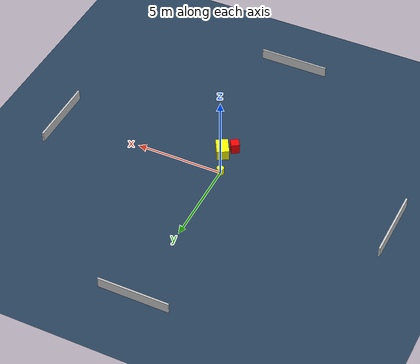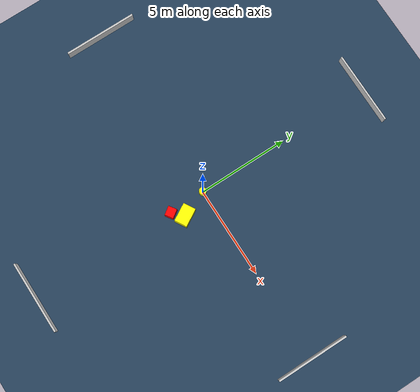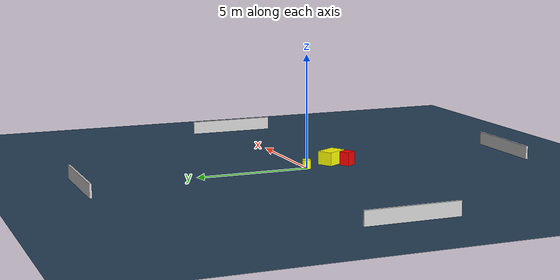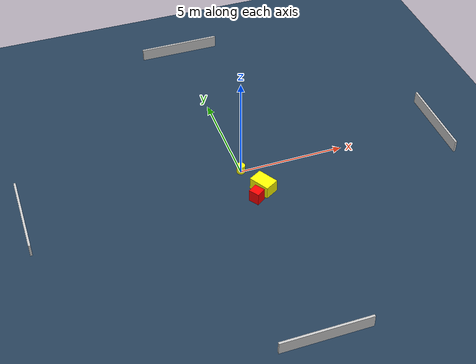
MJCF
<?xml version="1.0" ?>
<mujoco model="generated_environment">
  <option timestep="0.01" integrator="RK4" cone="elliptic"/>
  <default>
    <geom density="1"/>
  </default>
  <asset>
    <texture builtin="gradient" height="3072" name="skybox" rgb1="0.3 0.5 0.7" rgb2="0 0 0" type="skybox" width="512"/>
    <texture builtin="checker" height="300" name="groundplane" rgb1="0.2 0.3 0.4" rgb2="0.1 0.2 0.3" type="2d" width="300"/>
    <material name="groundplane" reflectance="0.2" texrepeat="5 5" texture="groundplane"/>
  </asset>
  <worldbody>
    <light dir="0 0 -1" directional="true" pos="0 0 1.5"/>
    <geom condim="3" friction="0.5 0.005 0.001" material="groundplane" name="floor" pos="0 0 0" size="0 0 0.05" type="plane"/>
    <body name="walls">
      <geom name="wall_1" condim="4" pos="-10.0 0.0 0.3" rgba="0.800000011920929 0.800000011920929 0.800000011920929 1.0" size="0.05 2.0 0.3" type="box"/>
      <geom name="wall_2" condim="4" pos="10.0 0.0 0.3" rgba="0.800000011920929 0.800000011920929 0.800000011920929 1.0" size="0.05 2.0 0.3" type="box"/>
      <geom name="wall_3" condim="4" pos="0.0 -10.0 0.3" rgba="0.800000011920929 0.800000011920929 0.800000011920929 1.0" size="2.0 0.05 0.3" type="box"/>
      <geom name="wall_4" condim="4" pos="0.0 10.0 0.3" rgba="0.800000011920929 0.800000011920929 0.800000011920929 1.0" size="2.0 0.05 0.3" type="box"/>
    </body>
    <body name="robot">
      <joint name="joint_x" type="slide" pos="0 0 0" axis="1 0 0"/>
      <joint name="joint_y" type="slide" pos="0 0 0" axis="0 1 0"/>
      <geom name="robot" type="cylinder" pos="0.0 0.0 0.2" size="0.2 0.2 0.0" mass="5.0" friction="1.0 0.005 0.0001" condim="4" rgba="1.0 1.0 0.0 1.0"/>
    </body>
    <body name="obstacle_1_movable">
      <geom name="obstacle_1_movable" condim="4" pos="0.5743314807200759 -1.4382588449085059 0.3" euler="0 0 299.9139947693811" friction="0.0 0.005 0.001" rgba="1.0 1.0 0.0 1.0" size="0.5083238664210435 0.3453653100684191 0.3" type="box" mass="0.1"/>
      <joint type="free"/>
    </body>
    <body name="obstacle_2_static">
      <geom name="obstacle_2_static" condim="4" pos="0.061617957273263316 -1.970615154298613 0.3" euler="0 0 124.19250032513091" friction="0.0 0.005 0.001" rgba="1.0 0.0 0.0 1.0" size="0.25572417380208096 0.23705967599619968 0.3" type="box"/>
    </body>
  </worldbody>
  <actuator>
    <motor name="actuator_x" joint="joint_x" gear="1" ctrlrange="-1 1"/>
    <motor name="actuator_y" joint="joint_y" gear="1" ctrlrange="-1 1"/>
  </actuator>
</mujoco>
